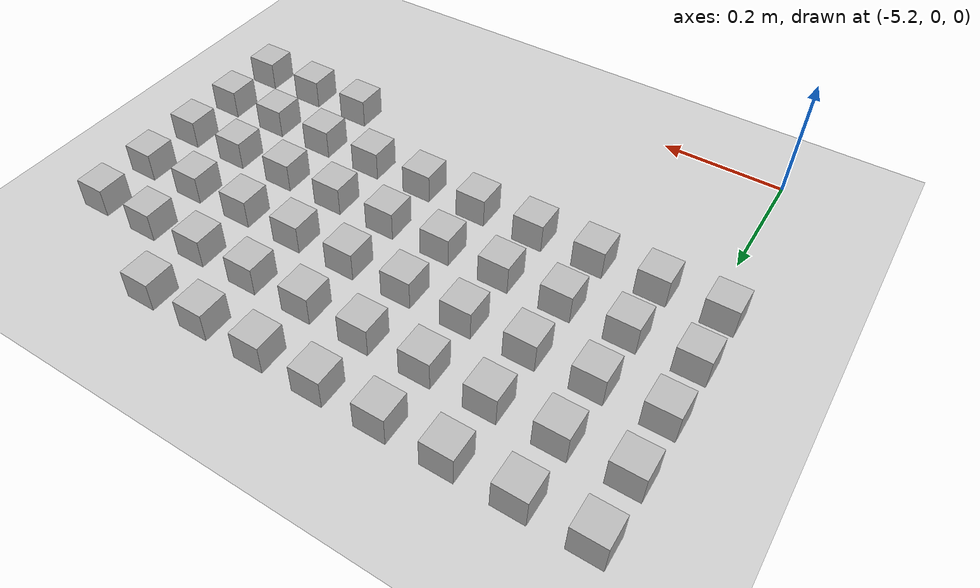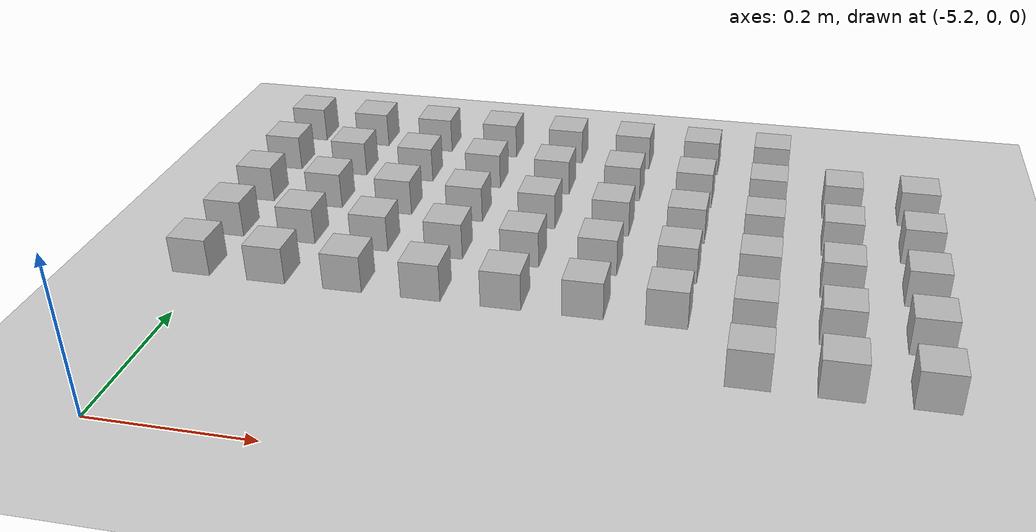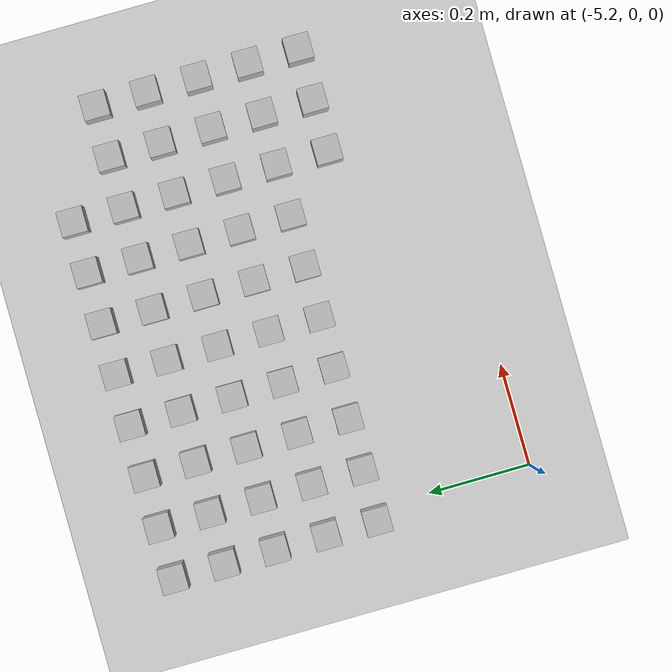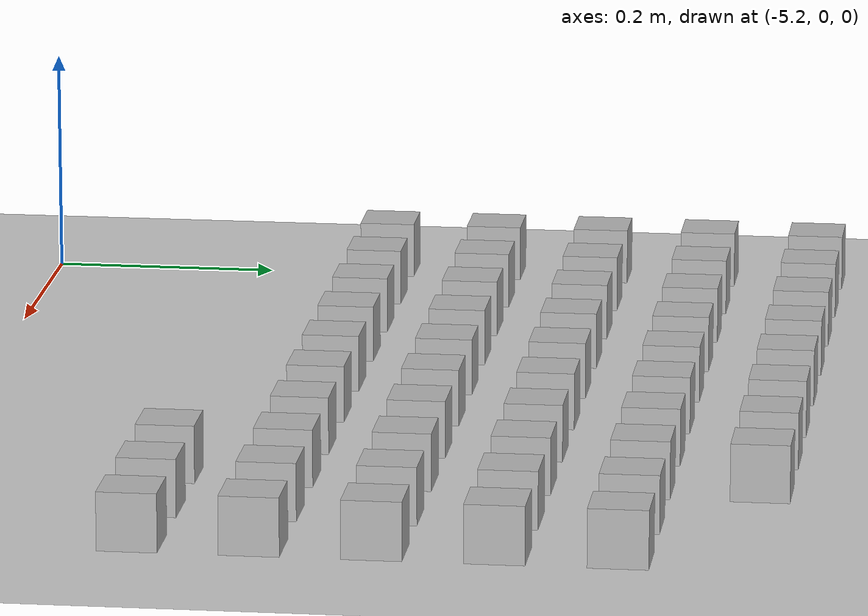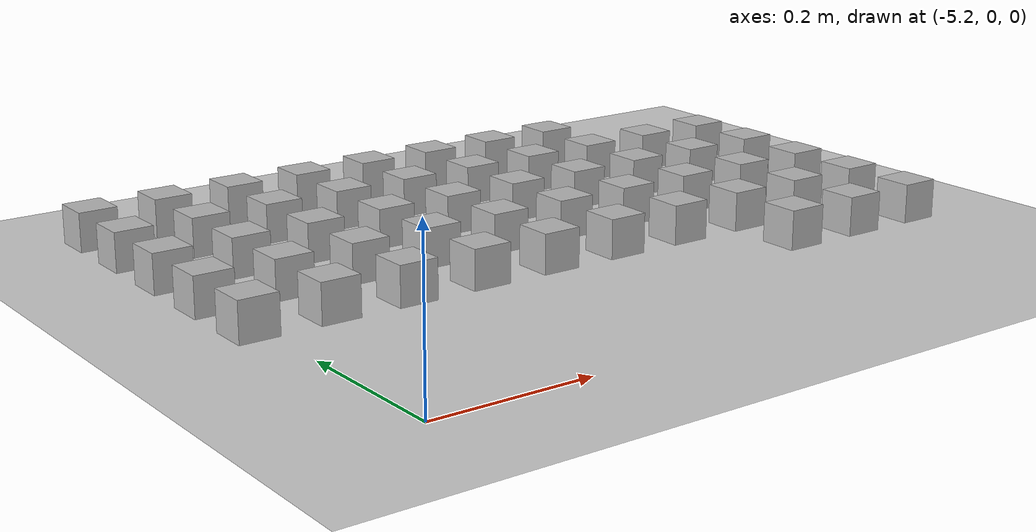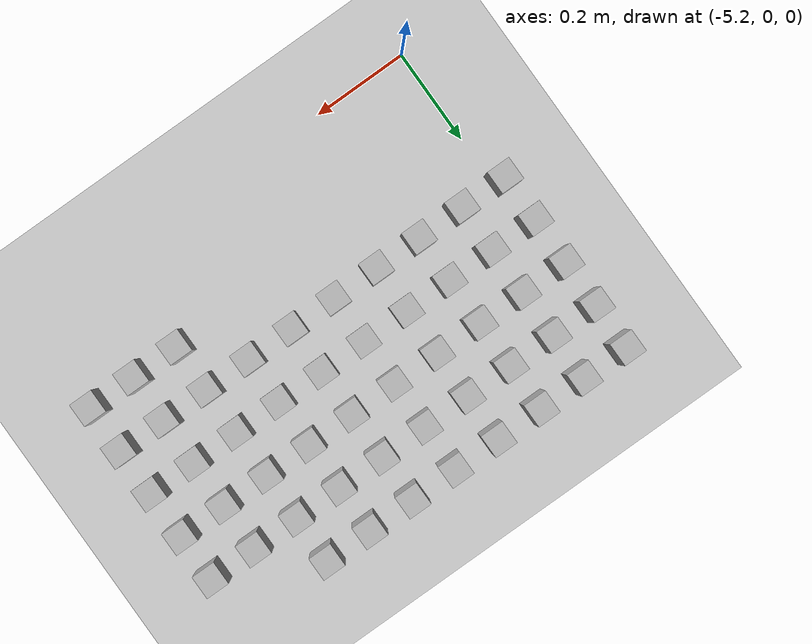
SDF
<sdf version="1.4">
 <world name="default">
  <model name="ground_plane">
   <static>1</static>
   <link name="link">
    <collision name="collision">
     <geometry><plane><normal>0 0 1</normal><size>100 100</size></plane></geometry>
     <surface><friction><ode><mu>100</mu><mu2>50</mu2></ode></friction></surface>
    </collision>
    <visual name="visual">
     <cast_shadows>0</cast_shadows>
     <geometry><plane><normal>0 0 1</normal><size>100 100</size></plane></geometry>
     <material>
      <script><uri>file://media/materials/scripts/gazebo.material</uri><name>Gazebo/Grey</name></script>
     </material>
    </visual>
    <velocity_decay><linear>0</linear><angular>0</angular></velocity_decay>
   </link>
  </model>
  <model name="at93">
   <static>0</static>
   <link name="link">
    <inertial>
     <mass>0.01</mass>
     <inertia><ixx>4e-05</ixx><ixy>0</ixy><ixz>0</ixz><iyy>4e-05</iyy><iyz>0</iyz><izz>4e-05</izz></inertia>
    </inertial>
    <visual name="visual">
     <geometry><box><size>0.05 0.05 0.05</size></box></geometry>
     <material>
      <script>
       <uri>model://at0/materials/scripts</uri>
       <uri>model://at0/materials/textures</uri>
       <name>at0/Diffuse</name>
      </script>
     </material>
    </visual>
    <collision name="collision">
     <geometry><box><size>0.05 0.05 0.05</size></box></geometry>
     <surface><friction><ode><mu>0.8</mu><mu2>0.7</mu2></ode></friction></surface>
    </collision>
    <velocity_decay><linear>0</linear><angular>0</angular></velocity_decay>
   </link>
   <pose>-4.51833 0.209652 0.025 0 -0 0</pose>
  </model>
  <model name="at94">
   <static>0</static>
   <link name="link">
    <inertial>
     <mass>0.01</mass>
     <inertia><ixx>4e-05</ixx><ixy>0</ixy><ixz>0</ixz><iyy>4e-05</iyy><iyz>0</iyz><izz>4e-05</izz></inertia>
    </inertial>
    <visual name="visual">
     <geometry><box><size>0.05 0.05 0.05</size></box></geometry>
     <material>
      <script>
       <uri>model://at0/materials/scripts</uri>
       <uri>model://at0/materials/textures</uri>
       <name>at0/Diffuse</name>
      </script>
     </material>
    </visual>
    <collision name="collision">
     <geometry><box><size>0.05 0.05 0.05</size></box></geometry>
     <surface><friction><ode><mu>0.8</mu><mu2>0.7</mu2></ode></friction></surface>
    </collision>
    <velocity_decay><linear>0</linear><angular>0</angular></velocity_decay>
   </link>
   <pose>-4.41833 0.209652 0.025 0 -0 0</pose>
  </model>
  <model name="at95">
   <static>0</static>
   <link name="link">
    <inertial>
     <mass>0.01</mass>
     <inertia><ixx>4e-05</ixx><ixy>0</ixy><ixz>0</ixz><iyy>4e-05</iyy><iyz>0</iyz><izz>4e-05</izz></inertia>
    </inertial>
    <visual name="visual">
     <geometry><box><size>0.05 0.05 0.05</size></box></geometry>
     <material>
      <script>
       <uri>model://at0/materials/scripts</uri>
       <uri>model://at0/materials/textures</uri>
       <name>at0/Diffuse</name>
      </script>
     </material>
    </visual>
    <collision name="collision">
     <geometry><box><size>0.05 0.05 0.05</size></box></geometry>
     <surface><friction><ode><mu>0.8</mu><mu2>0.7</mu2></ode></friction></surface>
    </collision>
    <velocity_decay><linear>0</linear><angular>0</angular></velocity_decay>
   </link>
   <pose>-4.31833 0.209652 0.025 0 -0 0</pose>
  </model>
  <model name="at102">
   <static>0</static>
   <link name="link">
    <inertial>
     <mass>0.01</mass>
     <inertia><ixx>4e-05</ixx><ixy>0</ixy><ixz>0</ixz><iyy>4e-05</iyy><iyz>0</iyz><izz>4e-05</izz></inertia>
    </inertial>
    <visual name="visual">
     <geometry><box><size>0.05 0.05 0.05</size></box></geometry>
     <material>
      <script>
       <uri>model://at0/materials/scripts</uri>
       <uri>model://at0/materials/textures</uri>
       <name>at0/Diffuse</name>
      </script>
     </material>
    </visual>
    <collision name="collision">
     <geometry><box><size>0.05 0.05 0.05</size></box></geometry>
     <surface><friction><ode><mu>0.8</mu><mu2>0.7</mu2></ode></friction></surface>
    </collision>
    <velocity_decay><linear>0</linear><angular>0</angular></velocity_decay>
   </link>
   <pose>-5.21833 0.309652 0.025 0 -0 0</pose>
  </model>
  <model name="at103">
   <static>0</static>
   <link name="link">
    <inertial>
     <mass>0.01</mass>
     <inertia><ixx>4e-05</ixx><ixy>0</ixy><ixz>0</ixz><iyy>4e-05</iyy><iyz>0</iyz><izz>4e-05</izz></inertia>
    </inertial>
    <visual name="visual">
     <geometry><box><size>0.05 0.05 0.05</size></box></geometry>
     <material>
      <script>
       <uri>model://at0/materials/scripts</uri>
       <uri>model://at0/materials/textures</uri>
       <name>at0/Diffuse</name>
      </script>
     </material>
    </visual>
    <collision name="collision">
     <geometry><box><size>0.05 0.05 0.05</size></box></geometry>
     <surface><friction><ode><mu>0.8</mu><mu2>0.7</mu2></ode></friction></surface>
    </collision>
    <velocity_decay><linear>0</linear><angular>0</angular></velocity_decay>
   </link>
   <pose>-5.11833 0.309652 0.025 0 -0 0</pose>
  </model>
  <model name="at104">
   <static>0</static>
   <link name="link">
    <inertial>
     <mass>0.01</mass>
     <inertia><ixx>4e-05</ixx><ixy>0</ixy><ixz>0</ixz><iyy>4e-05</iyy><iyz>0</iyz><izz>4e-05</izz></inertia>
    </inertial>
    <visual name="visual">
     <geometry><box><size>0.05 0.05 0.05</size></box></geometry>
     <material>
      <script>
       <uri>model://at0/materials/scripts</uri>
       <uri>model://at0/materials/textures</uri>
       <name>at0/Diffuse</name>
      </script>
     </material>
    </visual>
    <collision name="collision">
     <geometry><box><size>0.05 0.05 0.05</size></box></geometry>
     <surface><friction><ode><mu>0.8</mu><mu2>0.7</mu2></ode></friction></surface>
    </collision>
    <velocity_decay><linear>0</linear><angular>0</angular></velocity_decay>
   </link>
   <pose>-5.01833 0.309652 0.025 0 -0 0</pose>
  </model>
  <model name="at105">
   <static>0</static>
   <link name="link">
    <inertial>
     <mass>0.01</mass>
     <inertia><ixx>4e-05</ixx><ixy>0</ixy><ixz>0</ixz><iyy>4e-05</iyy><iyz>0</iyz><izz>4e-05</izz></inertia>
    </inertial>
    <visual name="visual">
     <geometry><box><size>0.05 0.05 0.05</size></box></geometry>
     <material>
      <script>
       <uri>model://at0/materials/scripts</uri>
       <uri>model://at0/materials/textures</uri>
       <name>at0/Diffuse</name>
      </script>
     </material>
    </visual>
    <collision name="collision">
     <geometry><box><size>0.05 0.05 0.05</size></box></geometry>
     <surface><friction><ode><mu>0.8</mu><mu2>0.7</mu2></ode></friction></surface>
    </collision>
    <velocity_decay><linear>0</linear><angular>0</angular></velocity_decay>
   </link>
   <pose>-4.91833 0.309652 0.025 0 -0 0</pose>
  </model>
  <model name="at106">
   <static>0</static>
   <link name="link">
    <inertial>
     <mass>0.01</mass>
     <inertia><ixx>4e-05</ixx><ixy>0</ixy><ixz>0</ixz><iyy>4e-05</iyy><iyz>0</iyz><izz>4e-05</izz></inertia>
    </inertial>
    <visual name="visual">
     <geometry><box><size>0.05 0.05 0.05</size></box></geometry>
     <material>
      <script>
       <uri>model://at0/materials/scripts</uri>
       <uri>model://at0/materials/textures</uri>
       <name>at0/Diffuse</name>
      </script>
     </material>
    </visual>
    <collision name="collision">
     <geometry><box><size>0.05 0.05 0.05</size></box></geometry>
     <surface><friction><ode><mu>0.8</mu><mu2>0.7</mu2></ode></friction></surface>
    </collision>
    <velocity_decay><linear>0</linear><angular>0</angular></velocity_decay>
   </link>
   <pose>-4.81833 0.309652 0.025 0 -0 0</pose>
  </model>
  <model name="at107">
   <static>0</static>
   <link name="link">
    <inertial>
     <mass>0.01</mass>
     <inertia><ixx>4e-05</ixx><ixy>0</ixy><ixz>0</ixz><iyy>4e-05</iyy><iyz>0</iyz><izz>4e-05</izz></inertia>
    </inertial>
    <visual name="visual">
     <geometry><box><size>0.05 0.05 0.05</size></box></geometry>
     <material>
      <script>
       <uri>model://at0/materials/scripts</uri>
       <uri>model://at0/materials/textures</uri>
       <name>at0/Diffuse</name>
      </script>
     </material>
    </visual>
    <collision name="collision">
     <geometry><box><size>0.05 0.05 0.05</size></box></geometry>
     <surface><friction><ode><mu>0.8</mu><mu2>0.7</mu2></ode></friction></surface>
    </collision>
    <velocity_decay><linear>0</linear><angular>0</angular></velocity_decay>
   </link>
   <pose>-4.71833 0.309652 0.025 0 -0 0</pose>
  </model>
  <model name="at108">
   <static>0</static>
   <link name="link">
    <inertial>
     <mass>0.01</mass>
     <inertia><ixx>4e-05</ixx><ixy>0</ixy><ixz>0</ixz><iyy>4e-05</iyy><iyz>0</iyz><izz>4e-05</izz></inertia>
    </inertial>
    <visual name="visual">
     <geometry><box><size>0.05 0.05 0.05</size></box></geometry>
     <material>
      <script>
       <uri>model://at0/materials/scripts</uri>
       <uri>model://at0/materials/textures</uri>
       <name>at0/Diffuse</name>
      </script>
     </material>
    </visual>
    <collision name="collision">
     <geometry><box><size>0.05 0.05 0.05</size></box></geometry>
     <surface><friction><ode><mu>0.8</mu><mu2>0.7</mu2></ode></friction></surface>
    </collision>
    <velocity_decay><linear>0</linear><angular>0</angular></velocity_decay>
   </link>
   <pose>-4.61833 0.309652 0.025 0 -0 0</pose>
  </model>
  <model name="at109">
   <static>0</static>
   <link name="link">
    <inertial>
     <mass>0.01</mass>
     <inertia><ixx>4e-05</ixx><ixy>0</ixy><ixz>0</ixz><iyy>4e-05</iyy><iyz>0</iyz><izz>4e-05</izz></inertia>
    </inertial>
    <visual name="visual">
     <geometry><box><size>0.05 0.05 0.05</size></box></geometry>
     <material>
      <script>
       <uri>model://at0/materials/scripts</uri>
       <uri>model://at0/materials/textures</uri>
       <name>at0/Diffuse</name>
      </script>
     </material>
    </visual>
    <collision name="collision">
     <geometry><box><size>0.05 0.05 0.05</size></box></geometry>
     <surface><friction><ode><mu>0.8</mu><mu2>0.7</mu2></ode></friction></surface>
    </collision>
    <velocity_decay><linear>0</linear><angular>0</angular></velocity_decay>
   </link>
   <pose>-4.51833 0.309652 0.025 0 -0 0</pose>
  </model>
  <model name="at110">
   <static>0</static>
   <link name="link">
    <inertial>
     <mass>0.01</mass>
     <inertia><ixx>4e-05</ixx><ixy>0</ixy><ixz>0</ixz><iyy>4e-05</iyy><iyz>0</iyz><izz>4e-05</izz></inertia>
    </inertial>
    <visual name="visual">
     <geometry><box><size>0.05 0.05 0.05</size></box></geometry>
     <material>
      <script>
       <uri>model://at0/materials/scripts</uri>
       <uri>model://at0/materials/textures</uri>
       <name>at0/Diffuse</name>
      </script>
     </material>
    </visual>
    <collision name="collision">
     <geometry><box><size>0.05 0.05 0.05</size></box></geometry>
     <surface><friction><ode><mu>0.8</mu><mu2>0.7</mu2></ode></friction></surface>
    </collision>
    <velocity_decay><linear>0</linear><angular>0</angular></velocity_decay>
   </link>
   <pose>-4.41833 0.309652 0.025 0 -0 0</pose>
  </model>
  <model name="at111">
   <static>0</static>
   <link name="link">
    <inertial>
     <mass>0.01</mass>
     <inertia><ixx>4e-05</ixx><ixy>0</ixy><ixz>0</ixz><iyy>4e-05</iyy><iyz>0</iyz><izz>4e-05</izz></inertia>
    </inertial>
    <visual name="visual">
     <geometry><box><size>0.05 0.05 0.05</size></box></geometry>
     <material>
      <script>
       <uri>model://at0/materials/scripts</uri>
       <uri>model://at0/materials/textures</uri>
       <name>at0/Diffuse</name>
      </script>
     </material>
    </visual>
    <collision name="collision">
     <geometry><box><size>0.05 0.05 0.05</size></box></geometry>
     <surface><friction><ode><mu>0.8</mu><mu2>0.7</mu2></ode></friction></surface>
    </collision>
    <velocity_decay><linear>0</linear><angular>0</angular></velocity_decay>
   </link>
   <pose>-4.31833 0.309652 0.025 0 -0 0</pose>
  </model>
  <model name="at118">
   <static>0</static>
   <link name="link">
    <inertial>
     <mass>0.01</mass>
     <inertia><ixx>4e-05</ixx><ixy>0</ixy><ixz>0</ixz><iyy>4e-05</iyy><iyz>0</iyz><izz>4e-05</izz></inertia>
    </inertial>
    <visual name="visual">
     <geometry><box><size>0.05 0.05 0.05</size></box></geometry>
     <material>
      <script>
       <uri>model://at0/materials/scripts</uri>
       <uri>model://at0/materials/textures</uri>
       <name>at0/Diffuse</name>
      </script>
     </material>
    </visual>
    <collision name="collision">
     <geometry><box><size>0.05 0.05 0.05</size></box></geometry>
     <surface><friction><ode><mu>0.8</mu><mu2>0.7</mu2></ode></friction></surface>
    </collision>
    <velocity_decay><linear>0</linear><angular>0</angular></velocity_decay>
   </link>
   <pose>-5.21833 0.409652 0.025 0 -0 0</pose>
  </model>
  <model name="at119">
   <static>0</static>
   <link name="link">
    <inertial>
     <mass>0.01</mass>
     <inertia><ixx>4e-05</ixx><ixy>0</ixy><ixz>0</ixz><iyy>4e-05</iyy><iyz>0</iyz><izz>4e-05</izz></inertia>
    </inertial>
    <visual name="visual">
     <geometry><box><size>0.05 0.05 0.05</size></box></geometry>
     <material>
      <script>
       <uri>model://at0/materials/scripts</uri>
       <uri>model://at0/materials/textures</uri>
       <name>at0/Diffuse</name>
      </script>
     </material>
    </visual>
    <collision name="collision">
     <geometry><box><size>0.05 0.05 0.05</size></box></geometry>
     <surface><friction><ode><mu>0.8</mu><mu2>0.7</mu2></ode></friction></surface>
    </collision>
    <velocity_decay><linear>0</linear><angular>0</angular></velocity_decay>
   </link>
   <pose>-5.11833 0.409652 0.025 0 -0 0</pose>
  </model>
  <model name="at120">
   <static>0</static>
   <link name="link">
    <inertial>
     <mass>0.01</mass>
     <inertia><ixx>4e-05</ixx><ixy>0</ixy><ixz>0</ixz><iyy>4e-05</iyy><iyz>0</iyz><izz>4e-05</izz></inertia>
    </inertial>
    <visual name="visual">
     <geometry><box><size>0.05 0.05 0.05</size></box></geometry>
     <material>
      <script>
       <uri>model://at0/materials/scripts</uri>
       <uri>model://at0/materials/textures</uri>
       <name>at0/Diffuse</name>
      </script>
     </material>
    </visual>
    <collision name="collision">
     <geometry><box><size>0.05 0.05 0.05</size></box></geometry>
     <surface><friction><ode><mu>0.8</mu><mu2>0.7</mu2></ode></friction></surface>
    </collision>
    <velocity_decay><linear>0</linear><angular>0</angular></velocity_decay>
   </link>
   <pose>-5.01833 0.409652 0.025 0 -0 0</pose>
  </model>
  <model name="at121">
   <static>0</static>
   <link name="link">
    <inertial>
     <mass>0.01</mass>
     <inertia><ixx>4e-05</ixx><ixy>0</ixy><ixz>0</ixz><iyy>4e-05</iyy><iyz>0</iyz><izz>4e-05</izz></inertia>
    </inertial>
    <visual name="visual">
     <geometry><box><size>0.05 0.05 0.05</size></box></geometry>
     <material>
      <script>
       <uri>model://at0/materials/scripts</uri>
       <uri>model://at0/materials/textures</uri>
       <name>at0/Diffuse</name>
      </script>
     </material>
    </visual>
    <collision name="collision">
     <geometry><box><size>0.05 0.05 0.05</size></box></geometry>
     <surface><friction><ode><mu>0.8</mu><mu2>0.7</mu2></ode></friction></surface>
    </collision>
    <velocity_decay><linear>0</linear><angular>0</angular></velocity_decay>
   </link>
   <pose>-4.91833 0.409652 0.025 0 -0 0</pose>
  </model>
  <model name="at122">
   <static>0</static>
   <link name="link">
    <inertial>
     <mass>0.01</mass>
     <inertia><ixx>4e-05</ixx><ixy>0</ixy><ixz>0</ixz><iyy>4e-05</iyy><iyz>0</iyz><izz>4e-05</izz></inertia>
    </inertial>
    <visual name="visual">
     <geometry><box><size>0.05 0.05 0.05</size></box></geometry>
     <material>
      <script>
       <uri>model://at0/materials/scripts</uri>
       <uri>model://at0/materials/textures</uri>
       <name>at0/Diffuse</name>
      </script>
     </material>
    </visual>
    <collision name="collision">
     <geometry><box><size>0.05 0.05 0.05</size></box></geometry>
     <surface><friction><ode><mu>0.8</mu><mu2>0.7</mu2></ode></friction></surface>
    </collision>
    <velocity_decay><linear>0</linear><angular>0</angular></velocity_decay>
   </link>
   <pose>-4.81833 0.409652 0.025 0 -0 0</pose>
  </model>
  <model name="at123">
   <static>0</static>
   <link name="link">
    <inertial>
     <mass>0.01</mass>
     <inertia><ixx>4e-05</ixx><ixy>0</ixy><ixz>0</ixz><iyy>4e-05</iyy><iyz>0</iyz><izz>4e-05</izz></inertia>
    </inertial>
    <visual name="visual">
     <geometry><box><size>0.05 0.05 0.05</size></box></geometry>
     <material>
      <script>
       <uri>model://at0/materials/scripts</uri>
       <uri>model://at0/materials/textures</uri>
       <name>at0/Diffuse</name>
      </script>
     </material>
    </visual>
    <collision name="collision">
     <geometry><box><size>0.05 0.05 0.05</size></box></geometry>
     <surface><friction><ode><mu>0.8</mu><mu2>0.7</mu2></ode></friction></surface>
    </collision>
    <velocity_decay><linear>0</linear><angular>0</angular></velocity_decay>
   </link>
   <pose>-4.71833 0.409652 0.025 0 -0 0</pose>
  </model>
  <model name="at124">
   <static>0</static>
   <link name="link">
    <inertial>
     <mass>0.01</mass>
     <inertia><ixx>4e-05</ixx><ixy>0</ixy><ixz>0</ixz><iyy>4e-05</iyy><iyz>0</iyz><izz>4e-05</izz></inertia>
    </inertial>
    <visual name="visual">
     <geometry><box><size>0.05 0.05 0.05</size></box></geometry>
     <material>
      <script>
       <uri>model://at0/materials/scripts</uri>
       <uri>model://at0/materials/textures</uri>
       <name>at0/Diffuse</name>
      </script>
     </material>
    </visual>
    <collision name="collision">
     <geometry><box><size>0.05 0.05 0.05</size></box></geometry>
     <surface><friction><ode><mu>0.8</mu><mu2>0.7</mu2></ode></friction></surface>
    </collision>
    <velocity_decay><linear>0</linear><angular>0</angular></velocity_decay>
   </link>
   <pose>-4.61833 0.409652 0.025 0 -0 0</pose>
  </model>
  <model name="at125">
   <static>0</static>
   <link name="link">
    <inertial>
     <mass>0.01</mass>
     <inertia><ixx>4e-05</ixx><ixy>0</ixy><ixz>0</ixz><iyy>4e-05</iyy><iyz>0</iyz><izz>4e-05</izz></inertia>
    </inertial>
    <visual name="visual">
     <geometry><box><size>0.05 0.05 0.05</size></box></geometry>
     <material>
      <script>
       <uri>model://at0/materials/scripts</uri>
       <uri>model://at0/materials/textures</uri>
       <name>at0/Diffuse</name>
      </script>
     </material>
    </visual>
    <collision name="collision">
     <geometry><box><size>0.05 0.05 0.05</size></box></geometry>
     <surface><friction><ode><mu>0.8</mu><mu2>0.7</mu2></ode></friction></surface>
    </collision>
    <velocity_decay><linear>0</linear><angular>0</angular></velocity_decay>
   </link>
   <pose>-4.51833 0.409652 0.025 0 -0 0</pose>
  </model>
  <model name="at126">
   <static>0</static>
   <link name="link">
    <inertial>
     <mass>0.01</mass>
     <inertia><ixx>4e-05</ixx><ixy>0</ixy><ixz>0</ixz><iyy>4e-05</iyy><iyz>0</iyz><izz>4e-05</izz></inertia>
    </inertial>
    <visual name="visual">
     <geometry><box><size>0.05 0.05 0.05</size></box></geometry>
     <material>
      <script>
       <uri>model://at0/materials/scripts</uri>
       <uri>model://at0/materials/textures</uri>
       <name>at0/Diffuse</name>
      </script>
     </material>
    </visual>
    <collision name="collision">
     <geometry><box><size>0.05 0.05 0.05</size></box></geometry>
     <surface><friction><ode><mu>0.8</mu><mu2>0.7</mu2></ode></friction></surface>
    </collision>
    <velocity_decay><linear>0</linear><angular>0</angular></velocity_decay>
   </link>
   <pose>-4.41833 0.409652 0.025 0 -0 0</pose>
  </model>
  <model name="at127">
   <static>0</static>
   <link name="link">
    <inertial>
     <mass>0.01</mass>
     <inertia><ixx>4e-05</ixx><ixy>0</ixy><ixz>0</ixz><iyy>4e-05</iyy><iyz>0</iyz><izz>4e-05</izz></inertia>
    </inertial>
    <visual name="visual">
     <geometry><box><size>0.05 0.05 0.05</size></box></geometry>
     <material>
      <script>
       <uri>model://at0/materials/scripts</uri>
       <uri>model://at0/materials/textures</uri>
       <name>at0/Diffuse</name>
      </script>
     </material>
    </visual>
    <collision name="collision">
     <geometry><box><size>0.05 0.05 0.05</size></box></geometry>
     <surface><friction><ode><mu>0.8</mu><mu2>0.7</mu2></ode></friction></surface>
    </collision>
    <velocity_decay><linear>0</linear><angular>0</angular></velocity_decay>
   </link>
   <pose>-4.31833 0.409652 0.025 0 -0 0</pose>
  </model>
  <model name="at134">
   <static>0</static>
   <link name="link">
    <inertial>
     <mass>0.01</mass>
     <inertia><ixx>4e-05</ixx><ixy>0</ixy><ixz>0</ixz><iyy>4e-05</iyy><iyz>0</iyz><izz>4e-05</izz></inertia>
    </inertial>
    <visual name="visual">
     <geometry><box><size>0.05 0.05 0.05</size></box></geometry>
     <material>
      <script>
       <uri>model://at0/materials/scripts</uri>
       <uri>model://at0/materials/textures</uri>
       <name>at0/Diffuse</name>
      </script>
     </material>
    </visual>
    <collision name="collision">
     <geometry><box><size>0.05 0.05 0.05</size></box></geometry>
     <surface><friction><ode><mu>0.8</mu><mu2>0.7</mu2></ode></friction></surface>
    </collision>
    <velocity_decay><linear>0</linear><angular>0</angular></velocity_decay>
   </link>
   <pose>-5.21833 0.509652 0.025 0 -0 0</pose>
  </model>
  <model name="at135">
   <static>0</static>
   <link name="link">
    <inertial>
     <mass>0.01</mass>
     <inertia><ixx>4e-05</ixx><ixy>0</ixy><ixz>0</ixz><iyy>4e-05</iyy><iyz>0</iyz><izz>4e-05</izz></inertia>
    </inertial>
    <visual name="visual">
     <geometry><box><size>0.05 0.05 0.05</size></box></geometry>
     <material>
      <script>
       <uri>model://at0/materials/scripts</uri>
       <uri>model://at0/materials/textures</uri>
       <name>at0/Diffuse</name>
      </script>
     </material>
    </visual>
    <collision name="collision">
     <geometry><box><size>0.05 0.05 0.05</size></box></geometry>
     <surface><friction><ode><mu>0.8</mu><mu2>0.7</mu2></ode></friction></surface>
    </collision>
    <velocity_decay><linear>0</linear><angular>0</angular></velocity_decay>
   </link>
   <pose>-5.11833 0.509652 0.025 0 -0 0</pose>
  </model>
  <model name="at136">
   <static>0</static>
   <link name="link">
    <inertial>
     <mass>0.01</mass>
     <inertia><ixx>4e-05</ixx><ixy>0</ixy><ixz>0</ixz><iyy>4e-05</iyy><iyz>0</iyz><izz>4e-05</izz></inertia>
    </inertial>
    <visual name="visual">
     <geometry><box><size>0.05 0.05 0.05</size></box></geometry>
     <material>
      <script>
       <uri>model://at0/materials/scripts</uri>
       <uri>model://at0/materials/textures</uri>
       <name>at0/Diffuse</name>
      </script>
     </material>
    </visual>
    <collision name="collision">
     <geometry><box><size>0.05 0.05 0.05</size></box></geometry>
     <surface><friction><ode><mu>0.8</mu><mu2>0.7</mu2></ode></friction></surface>
    </collision>
    <velocity_decay><linear>0</linear><angular>0</angular></velocity_decay>
   </link>
   <pose>-5.01833 0.509652 0.025 0 -0 0</pose>
  </model>
  <model name="at137">
   <static>0</static>
   <link name="link">
    <inertial>
     <mass>0.01</mass>
     <inertia><ixx>4e-05</ixx><ixy>0</ixy><ixz>0</ixz><iyy>4e-05</iyy><iyz>0</iyz><izz>4e-05</izz></inertia>
    </inertial>
    <visual name="visual">
     <geometry><box><size>0.05 0.05 0.05</size></box></geometry>
     <material>
      <script>
       <uri>model://at0/materials/scripts</uri>
       <uri>model://at0/materials/textures</uri>
       <name>at0/Diffuse</name>
      </script>
     </material>
    </visual>
    <collision name="collision">
     <geometry><box><size>0.05 0.05 0.05</size></box></geometry>
     <surface><friction><ode><mu>0.8</mu><mu2>0.7</mu2></ode></friction></surface>
    </collision>
    <velocity_decay><linear>0</linear><angular>0</angular></velocity_decay>
   </link>
   <pose>-4.91833 0.509652 0.025 0 -0 0</pose>
  </model>
  <model name="at138">
   <static>0</static>
   <link name="link">
    <inertial>
     <mass>0.01</mass>
     <inertia><ixx>4e-05</ixx><ixy>0</ixy><ixz>0</ixz><iyy>4e-05</iyy><iyz>0</iyz><izz>4e-05</izz></inertia>
    </inertial>
    <visual name="visual">
     <geometry><box><size>0.05 0.05 0.05</size></box></geometry>
     <material>
      <script>
       <uri>model://at0/materials/scripts</uri>
       <uri>model://at0/materials/textures</uri>
       <name>at0/Diffuse</name>
      </script>
     </material>
    </visual>
    <collision name="collision">
     <geometry><box><size>0.05 0.05 0.05</size></box></geometry>
     <surface><friction><ode><mu>0.8</mu><mu2>0.7</mu2></ode></friction></surface>
    </collision>
    <velocity_decay><linear>0</linear><angular>0</angular></velocity_decay>
   </link>
   <pose>-4.81833 0.509652 0.025 0 -0 0</pose>
  </model>
  <model name="at139">
   <static>0</static>
   <link name="link">
    <inertial>
     <mass>0.01</mass>
     <inertia><ixx>4e-05</ixx><ixy>0</ixy><ixz>0</ixz><iyy>4e-05</iyy><iyz>0</iyz><izz>4e-05</izz></inertia>
    </inertial>
    <visual name="visual">
     <geometry><box><size>0.05 0.05 0.05</size></box></geometry>
     <material>
      <script>
       <uri>model://at0/materials/scripts</uri>
       <uri>model://at0/materials/textures</uri>
       <name>at0/Diffuse</name>
      </script>
     </material>
    </visual>
    <collision name="collision">
     <geometry><box><size>0.05 0.05 0.05</size></box></geometry>
     <surface><friction><ode><mu>0.8</mu><mu2>0.7</mu2></ode></friction></surface>
    </collision>
    <velocity_decay><linear>0</linear><angular>0</angular></velocity_decay>
   </link>
   <pose>-4.71833 0.509652 0.025 0 -0 0</pose>
  </model>
  <model name="at140">
   <static>0</static>
   <link name="link">
    <inertial>
     <mass>0.01</mass>
     <inertia><ixx>4e-05</ixx><ixy>0</ixy><ixz>0</ixz><iyy>4e-05</iyy><iyz>0</iyz><izz>4e-05</izz></inertia>
    </inertial>
    <visual name="visual">
     <geometry><box><size>0.05 0.05 0.05</size></box></geometry>
     <material>
      <script>
       <uri>model://at0/materials/scripts</uri>
       <uri>model://at0/materials/textures</uri>
       <name>at0/Diffuse</name>
      </script>
     </material>
    </visual>
    <collision name="collision">
     <geometry><box><size>0.05 0.05 0.05</size></box></geometry>
     <surface><friction><ode><mu>0.8</mu><mu2>0.7</mu2></ode></friction></surface>
    </collision>
    <velocity_decay><linear>0</linear><angular>0</angular></velocity_decay>
   </link>
   <pose>-4.61833 0.509652 0.025 0 -0 0</pose>
  </model>
  <model name="at141">
   <static>0</static>
   <link name="link">
    <inertial>
     <mass>0.01</mass>
     <inertia><ixx>4e-05</ixx><ixy>0</ixy><ixz>0</ixz><iyy>4e-05</iyy><iyz>0</iyz><izz>4e-05</izz></inertia>
    </inertial>
    <visual name="visual">
     <geometry><box><size>0.05 0.05 0.05</size></box></geometry>
     <material>
      <script>
       <uri>model://at0/materials/scripts</uri>
       <uri>model://at0/materials/textures</uri>
       <name>at0/Diffuse</name>
      </script>
     </material>
    </visual>
    <collision name="collision">
     <geometry><box><size>0.05 0.05 0.05</size></box></geometry>
     <surface><friction><ode><mu>0.8</mu><mu2>0.7</mu2></ode></friction></surface>
    </collision>
    <velocity_decay><linear>0</linear><angular>0</angular></velocity_decay>
   </link>
   <pose>-4.51833 0.509652 0.025 0 -0 0</pose>
  </model>
  <model name="at142">
   <static>0</static>
   <link name="link">
    <inertial>
     <mass>0.01</mass>
     <inertia><ixx>4e-05</ixx><ixy>0</ixy><ixz>0</ixz><iyy>4e-05</iyy><iyz>0</iyz><izz>4e-05</izz></inertia>
    </inertial>
    <visual name="visual">
     <geometry><box><size>0.05 0.05 0.05</size></box></geometry>
     <material>
      <script>
       <uri>model://at0/materials/scripts</uri>
       <uri>model://at0/materials/textures</uri>
       <name>at0/Diffuse</name>
      </script>
     </material>
    </visual>
    <collision name="collision">
     <geometry><box><size>0.05 0.05 0.05</size></box></geometry>
     <surface><friction><ode><mu>0.8</mu><mu2>0.7</mu2></ode></friction></surface>
    </collision>
    <velocity_decay><linear>0</linear><angular>0</angular></velocity_decay>
   </link>
   <pose>-4.41833 0.509652 0.025 0 -0 0</pose>
  </model>
  <model name="at143">
   <static>0</static>
   <link name="link">
    <inertial>
     <mass>0.01</mass>
     <inertia><ixx>4e-05</ixx><ixy>0</ixy><ixz>0</ixz><iyy>4e-05</iyy><iyz>0</iyz><izz>4e-05</izz></inertia>
    </inertial>
    <visual name="visual">
     <geometry><box><size>0.05 0.05 0.05</size></box></geometry>
     <material>
      <script>
       <uri>model://at0/materials/scripts</uri>
       <uri>model://at0/materials/textures</uri>
       <name>at0/Diffuse</name>
      </script>
     </material>
    </visual>
    <collision name="collision">
     <geometry><box><size>0.05 0.05 0.05</size></box></geometry>
     <surface><friction><ode><mu>0.8</mu><mu2>0.7</mu2></ode></friction></surface>
    </collision>
    <velocity_decay><linear>0</linear><angular>0</angular></velocity_decay>
   </link>
   <pose>-4.31833 0.509652 0.025 0 -0 0</pose>
  </model>
  <model name="at150">
   <static>0</static>
   <link name="link">
    <inertial>
     <mass>0.01</mass>
     <inertia><ixx>4e-05</ixx><ixy>0</ixy><ixz>0</ixz><iyy>4e-05</iyy><iyz>0</iyz><izz>4e-05</izz></inertia>
    </inertial>
    <visual name="visual">
     <geometry><box><size>0.05 0.05 0.05</size></box></geometry>
     <material>
      <script>
       <uri>model://at0/materials/scripts</uri>
       <uri>model://at0/materials/textures</uri>
       <name>at0/Diffuse</name>
      </script>
     </material>
    </visual>
    <collision name="collision">
     <geometry><box><size>0.05 0.05 0.05</size></box></geometry>
     <surface><friction><ode><mu>0.8</mu><mu2>0.7</mu2></ode></friction></surface>
    </collision>
    <velocity_decay><linear>0</linear><angular>0</angular></velocity_decay>
   </link>
   <pose>-5.21833 0.609652 0.025 0 -0 0</pose>
  </model>
  <model name="at151">
   <static>0</static>
   <link name="link">
    <inertial>
     <mass>0.01</mass>
     <inertia><ixx>4e-05</ixx><ixy>0</ixy><ixz>0</ixz><iyy>4e-05</iyy><iyz>0</iyz><izz>4e-05</izz></inertia>
    </inertial>
    <visual name="visual">
     <geometry><box><size>0.05 0.05 0.05</size></box></geometry>
     <material>
      <script>
       <uri>model://at0/materials/scripts</uri>
       <uri>model://at0/materials/textures</uri>
       <name>at0/Diffuse</name>
      </script>
     </material>
    </visual>
    <collision name="collision">
     <geometry><box><size>0.05 0.05 0.05</size></box></geometry>
     <surface><friction><ode><mu>0.8</mu><mu2>0.7</mu2></ode></friction></surface>
    </collision>
    <velocity_decay><linear>0</linear><angular>0</angular></velocity_decay>
   </link>
   <pose>-5.11833 0.609652 0.025 0 -0 0</pose>
  </model>
  <model name="at152">
   <static>0</static>
   <link name="link">
    <inertial>
     <mass>0.01</mass>
     <inertia><ixx>4e-05</ixx><ixy>0</ixy><ixz>0</ixz><iyy>4e-05</iyy><iyz>0</iyz><izz>4e-05</izz></inertia>
    </inertial>
    <visual name="visual">
     <geometry><box><size>0.05 0.05 0.05</size></box></geometry>
     <material>
      <script>
       <uri>model://at0/materials/scripts</uri>
       <uri>model://at0/materials/textures</uri>
       <name>at0/Diffuse</name>
      </script>
     </material>
    </visual>
    <collision name="collision">
     <geometry><box><size>0.05 0.05 0.05</size></box></geometry>
     <surface><friction><ode><mu>0.8</mu><mu2>0.7</mu2></ode></friction></surface>
    </collision>
    <velocity_decay><linear>0</linear><angular>0</angular></velocity_decay>
   </link>
   <pose>-5.01833 0.609652 0.025 0 -0 0</pose>
  </model>
  <model name="at153">
   <static>0</static>
   <link name="link">
    <inertial>
     <mass>0.01</mass>
     <inertia><ixx>4e-05</ixx><ixy>0</ixy><ixz>0</ixz><iyy>4e-05</iyy><iyz>0</iyz><izz>4e-05</izz></inertia>
    </inertial>
    <visual name="visual">
     <geometry><box><size>0.05 0.05 0.05</size></box></geometry>
     <material>
      <script>
       <uri>model://at0/materials/scripts</uri>
       <uri>model://at0/materials/textures</uri>
       <name>at0/Diffuse</name>
      </script>
     </material>
    </visual>
    <collision name="collision">
     <geometry><box><size>0.05 0.05 0.05</size></box></geometry>
     <surface><friction><ode><mu>0.8</mu><mu2>0.7</mu2></ode></friction></surface>
    </collision>
    <velocity_decay><linear>0</linear><angular>0</angular></velocity_decay>
   </link>
   <pose>-4.91833 0.609652 0.025 0 -0 0</pose>
  </model>
  <model name="at154">
   <static>0</static>
   <link name="link">
    <inertial>
     <mass>0.01</mass>
     <inertia><ixx>4e-05</ixx><ixy>0</ixy><ixz>0</ixz><iyy>4e-05</iyy><iyz>0</iyz><izz>4e-05</izz></inertia>
    </inertial>
    <visual name="visual">
     <geometry><box><size>0.05 0.05 0.05</size></box></geometry>
     <material>
      <script>
       <uri>model://at0/materials/scripts</uri>
       <uri>model://at0/materials/textures</uri>
       <name>at0/Diffuse</name>
      </script>
     </material>
    </visual>
    <collision name="collision">
     <geometry><box><size>0.05 0.05 0.05</size></box></geometry>
     <surface><friction><ode><mu>0.8</mu><mu2>0.7</mu2></ode></friction></surface>
    </collision>
    <velocity_decay><linear>0</linear><angular>0</angular></velocity_decay>
   </link>
   <pose>-4.81833 0.609652 0.025 0 -0 0</pose>
  </model>
  <model name="at155">
   <static>0</static>
   <link name="link">
    <inertial>
     <mass>0.01</mass>
     <inertia><ixx>4e-05</ixx><ixy>0</ixy><ixz>0</ixz><iyy>4e-05</iyy><iyz>0</iyz><izz>4e-05</izz></inertia>
    </inertial>
    <visual name="visual">
     <geometry><box><size>0.05 0.05 0.05</size></box></geometry>
     <material>
      <script>
       <uri>model://at0/materials/scripts</uri>
       <uri>model://at0/materials/textures</uri>
       <name>at0/Diffuse</name>
      </script>
     </material>
    </visual>
    <collision name="collision">
     <geometry><box><size>0.05 0.05 0.05</size></box></geometry>
     <surface><friction><ode><mu>0.8</mu><mu2>0.7</mu2></ode></friction></surface>
    </collision>
    <velocity_decay><linear>0</linear><angular>0</angular></velocity_decay>
   </link>
   <pose>-4.71833 0.609652 0.025 0 -0 0</pose>
  </model>
  <model name="at156">
   <static>0</static>
   <link name="link">
    <inertial>
     <mass>0.01</mass>
     <inertia><ixx>4e-05</ixx><ixy>0</ixy><ixz>0</ixz><iyy>4e-05</iyy><iyz>0</iyz><izz>4e-05</izz></inertia>
    </inertial>
    <visual name="visual">
     <geometry><box><size>0.05 0.05 0.05</size></box></geometry>
     <material>
      <script>
       <uri>model://at0/materials/scripts</uri>
       <uri>model://at0/materials/textures</uri>
       <name>at0/Diffuse</name>
      </script>
     </material>
    </visual>
    <collision name="collision">
     <geometry><box><size>0.05 0.05 0.05</size></box></geometry>
     <surface><friction><ode><mu>0.8</mu><mu2>0.7</mu2></ode></friction></surface>
    </collision>
    <velocity_decay><linear>0</linear><angular>0</angular></velocity_decay>
   </link>
   <pose>-4.61833 0.609652 0.025 0 -0 0</pose>
  </model>
  <model name="at157">
   <static>0</static>
   <link name="link">
    <inertial>
     <mass>0.01</mass>
     <inertia><ixx>4e-05</ixx><ixy>0</ixy><ixz>0</ixz><iyy>4e-05</iyy><iyz>0</iyz><izz>4e-05</izz></inertia>
    </inertial>
    <visual name="visual">
     <geometry><box><size>0.05 0.05 0.05</size></box></geometry>
     <material>
      <script>
       <uri>model://at0/materials/scripts</uri>
       <uri>model://at0/materials/textures</uri>
       <name>at0/Diffuse</name>
      </script>
     </material>
    </visual>
    <collision name="collision">
     <geometry><box><size>0.05 0.05 0.05</size></box></geometry>
     <surface><friction><ode><mu>0.8</mu><mu2>0.7</mu2></ode></friction></surface>
    </collision>
    <velocity_decay><linear>0</linear><angular>0</angular></velocity_decay>
   </link>
   <pose>-4.51833 0.609652 0.025 0 -0 0</pose>
  </model>
  <model name="at158">
   <static>0</static>
   <link name="link">
    <inertial>
     <mass>0.01</mass>
     <inertia><ixx>4e-05</ixx><ixy>0</ixy><ixz>0</ixz><iyy>4e-05</iyy><iyz>0</iyz><izz>4e-05</izz></inertia>
    </inertial>
    <visual name="visual">
     <geometry><box><size>0.05 0.05 0.05</size></box></geometry>
     <material>
      <script>
       <uri>model://at0/materials/scripts</uri>
       <uri>model://at0/materials/textures</uri>
       <name>at0/Diffuse</name>
      </script>
     </material>
    </visual>
    <collision name="collision">
     <geometry><box><size>0.05 0.05 0.05</size></box></geometry>
     <surface><friction><ode><mu>0.8</mu><mu2>0.7</mu2></ode></friction></surface>
    </collision>
    <velocity_decay><linear>0</linear><angular>0</angular></velocity_decay>
   </link>
   <pose>-4.41833 0.609652 0.025 0 -0 0</pose>
  </model>
  <model name="at159">
   <static>0</static>
   <link name="link">
    <inertial>
     <mass>0.01</mass>
     <inertia><ixx>4e-05</ixx><ixy>0</ixy><ixz>0</ixz><iyy>4e-05</iyy><iyz>0</iyz><izz>4e-05</izz></inertia>
    </inertial>
    <visual name="visual">
     <geometry><box><size>0.05 0.05 0.05</size></box></geometry>
     <material>
      <script>
       <uri>model://at0/materials/scripts</uri>
       <uri>model://at0/materials/textures</uri>
       <name>at0/Diffuse</name>
      </script>
     </material>
    </visual>
    <collision name="collision">
     <geometry><box><size>0.05 0.05 0.05</size></box></geometry>
     <surface><friction><ode><mu>0.8</mu><mu2>0.7</mu2></ode></friction></surface>
    </collision>
    <velocity_decay><linear>0</linear><angular>0</angular></velocity_decay>
   </link>
   <pose>-4.31833 0.609652 0.025 0 -0 0</pose>
  </model>
  <model name="at166">
   <static>0</static>
   <link name="link">
    <inertial>
     <mass>0.01</mass>
     <inertia><ixx>4e-05</ixx><ixy>0</ixy><ixz>0</ixz><iyy>4e-05</iyy><iyz>0</iyz><izz>4e-05</izz></inertia>
    </inertial>
    <visual name="visual">
     <geometry><box><size>0.05 0.05 0.05</size></box></geometry>
     <material>
      <script>
       <uri>model://at0/materials/scripts</uri>
       <uri>model://at0/materials/textures</uri>
       <name>at0/Diffuse</name>
      </script>
     </material>
    </visual>
    <collision name="collision">
     <geometry><box><size>0.05 0.05 0.05</size></box></geometry>
     <surface><friction><ode><mu>0.8</mu><mu2>0.7</mu2></ode></friction></surface>
    </collision>
    <velocity_decay><linear>0</linear><angular>0</angular></velocity_decay>
   </link>
   <pose>-5.21833 0.709652 0.025 0 -0 0</pose>
  </model>
  <model name="at167">
   <static>0</static>
   <link name="link">
    <inertial>
     <mass>0.01</mass>
     <inertia><ixx>4e-05</ixx><ixy>0</ixy><ixz>0</ixz><iyy>4e-05</iyy><iyz>0</iyz><izz>4e-05</izz></inertia>
    </inertial>
    <visual name="visual">
     <geometry><box><size>0.05 0.05 0.05</size></box></geometry>
     <material>
      <script>
       <uri>model://at0/materials/scripts</uri>
       <uri>model://at0/materials/textures</uri>
       <name>at0/Diffuse</name>
      </script>
     </material>
    </visual>
    <collision name="collision">
     <geometry><box><size>0.05 0.05 0.05</size></box></geometry>
     <surface><friction><ode><mu>0.8</mu><mu2>0.7</mu2></ode></friction></surface>
    </collision>
    <velocity_decay><linear>0</linear><angular>0</angular></velocity_decay>
   </link>
   <pose>-5.11833 0.709652 0.025 0 -0 0</pose>
  </model>
  <model name="at168">
   <static>0</static>
   <link name="link">
    <inertial>
     <mass>0.01</mass>
     <inertia><ixx>4e-05</ixx><ixy>0</ixy><ixz>0</ixz><iyy>4e-05</iyy><iyz>0</iyz><izz>4e-05</izz></inertia>
    </inertial>
    <visual name="visual">
     <geometry><box><size>0.05 0.05 0.05</size></box></geometry>
     <material>
      <script>
       <uri>model://at0/materials/scripts</uri>
       <uri>model://at0/materials/textures</uri>
       <name>at0/Diffuse</name>
      </script>
     </material>
    </visual>
    <collision name="collision">
     <geometry><box><size>0.05 0.05 0.05</size></box></geometry>
     <surface><friction><ode><mu>0.8</mu><mu2>0.7</mu2></ode></friction></surface>
    </collision>
    <velocity_decay><linear>0</linear><angular>0</angular></velocity_decay>
   </link>
   <pose>-5.01833 0.709652 0.025 0 -0 0</pose>
  </model>
  <model name="at169">
   <static>0</static>
   <link name="link">
    <inertial>
     <mass>0.01</mass>
     <inertia><ixx>4e-05</ixx><ixy>0</ixy><ixz>0</ixz><iyy>4e-05</iyy><iyz>0</iyz><izz>4e-05</izz></inertia>
    </inertial>
    <visual name="visual">
     <geometry><box><size>0.05 0.05 0.05</size></box></geometry>
     <material>
      <script>
       <uri>model://at0/materials/scripts</uri>
       <uri>model://at0/materials/textures</uri>
       <name>at0/Diffuse</name>
      </script>
     </material>
    </visual>
    <collision name="collision">
     <geometry><box><size>0.05 0.05 0.05</size></box></geometry>
     <surface><friction><ode><mu>0.8</mu><mu2>0.7</mu2></ode></friction></surface>
    </collision>
    <velocity_decay><linear>0</linear><angular>0</angular></velocity_decay>
   </link>
   <pose>-4.91833 0.709652 0.025 0 -0 0</pose>
  </model>
  <model name="at170">
   <static>0</static>
   <link name="link">
    <inertial>
     <mass>0.01</mass>
     <inertia><ixx>4e-05</ixx><ixy>0</ixy><ixz>0</ixz><iyy>4e-05</iyy><iyz>0</iyz><izz>4e-05</izz></inertia>
    </inertial>
    <visual name="visual">
     <geometry><box><size>0.05 0.05 0.05</size></box></geometry>
     <material>
      <script>
       <uri>model://at0/materials/scripts</uri>
       <uri>model://at0/materials/textures</uri>
       <name>at0/Diffuse</name>
      </script>
     </material>
    </visual>
    <collision name="collision">
     <geometry><box><size>0.05 0.05 0.05</size></box></geometry>
     <surface><friction><ode><mu>0.8</mu><mu2>0.7</mu2></ode></friction></surface>
    </collision>
    <velocity_decay><linear>0</linear><angular>0</angular></velocity_decay>
   </link>
   <pose>-4.81833 0.709652 0.025 0 -0 0</pose>
  </model>
  <model name="at171">
   <static>0</static>
   <link name="link">
    <inertial>
     <mass>0.01</mass>
     <inertia><ixx>4e-05</ixx><ixy>0</ixy><ixz>0</ixz><iyy>4e-05</iyy><iyz>0</iyz><izz>4e-05</izz></inertia>
    </inertial>
    <visual name="visual">
     <geometry><box><size>0.05 0.05 0.05</size></box></geometry>
     <material>
      <script>
       <uri>model://at0/materials/scripts</uri>
       <uri>model://at0/materials/textures</uri>
       <name>at0/Diffuse</name>
      </script>
     </material>
    </visual>
    <collision name="collision">
     <geometry><box><size>0.05 0.05 0.05</size></box></geometry>
     <surface><friction><ode><mu>0.8</mu><mu2>0.7</mu2></ode></friction></surface>
    </collision>
    <velocity_decay><linear>0</linear><angular>0</angular></velocity_decay>
   </link>
   <pose>-4.71833 0.709652 0.025 0 -0 0</pose>
  </model>
  <model name="at172">
   <static>0</static>
   <link name="link">
    <inertial>
     <mass>0.01</mass>
     <inertia><ixx>4e-05</ixx><ixy>0</ixy><ixz>0</ixz><iyy>4e-05</iyy><iyz>0</iyz><izz>4e-05</izz></inertia>
    </inertial>
    <visual name="visual">
     <geometry><box><size>0.05 0.05 0.05</size></box></geometry>
     <material>
      <script>
       <uri>model://at0/materials/scripts</uri>
       <uri>model://at0/materials/textures</uri>
       <name>at0/Diffuse</name>
      </script>
     </material>
    </visual>
    <collision name="collision">
     <geometry><box><size>0.05 0.05 0.05</size></box></geometry>
     <surface><friction><ode><mu>0.8</mu><mu2>0.7</mu2></ode></friction></surface>
    </collision>
    <velocity_decay><linear>0</linear><angular>0</angular></velocity_decay>
   </link>
   <pose>-4.61833 0.709652 0.025 0 -0 0</pose>
  </model>
  <model name="at173">
   <static>0</static>
   <link name="link">
    <inertial>
     <mass>0.01</mass>
     <inertia><ixx>4e-05</ixx><ixy>0</ixy><ixz>0</ixz><iyy>4e-05</iyy><iyz>0</iyz><izz>4e-05</izz></inertia>
    </inertial>
    <visual name="visual">
     <geometry><box><size>0.05 0.05 0.05</size></box></geometry>
     <material>
      <script>
       <uri>model://at0/materials/scripts</uri>
       <uri>model://at0/materials/textures</uri>
       <name>at0/Diffuse</name>
      </script>
     </material>
    </visual>
    <collision name="collision">
     <geometry><box><size>0.05 0.05 0.05</size></box></geometry>
     <surface><friction><ode><mu>0.8</mu><mu2>0.7</mu2></ode></friction></surface>
    </collision>
    <velocity_decay><linear>0</linear><angular>0</angular></velocity_decay>
   </link>
   <pose>-4.51833 0.709652 0.025 0 -0 0</pose>
  </model>
 </world>
</sdf>
